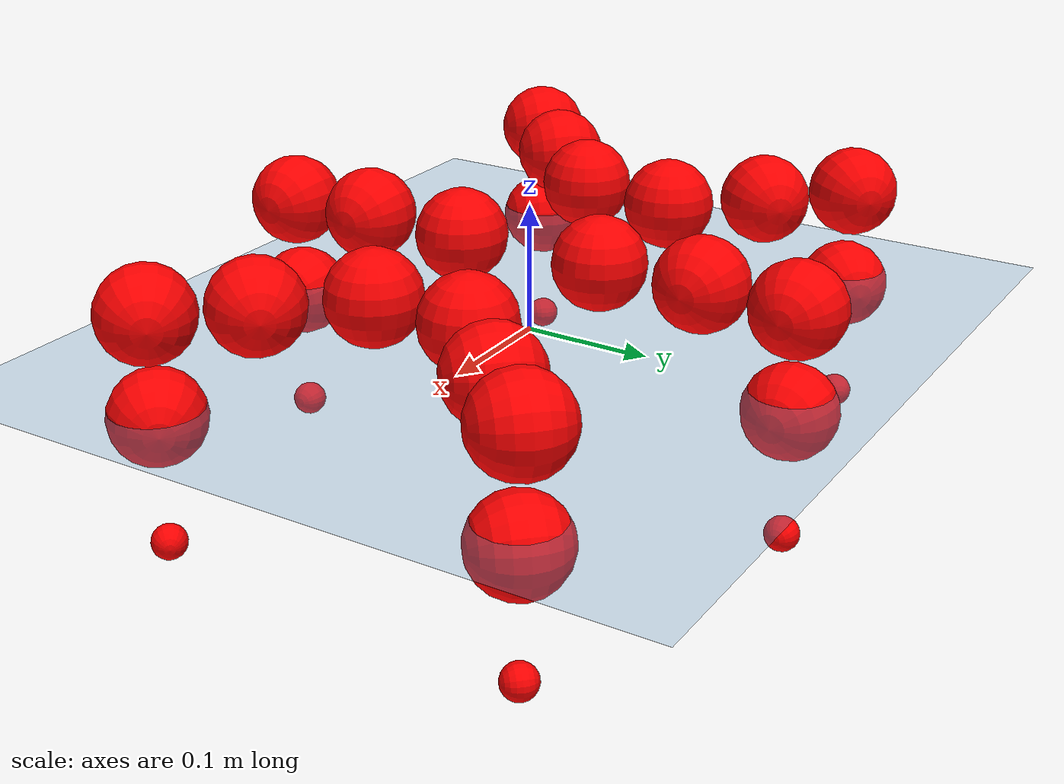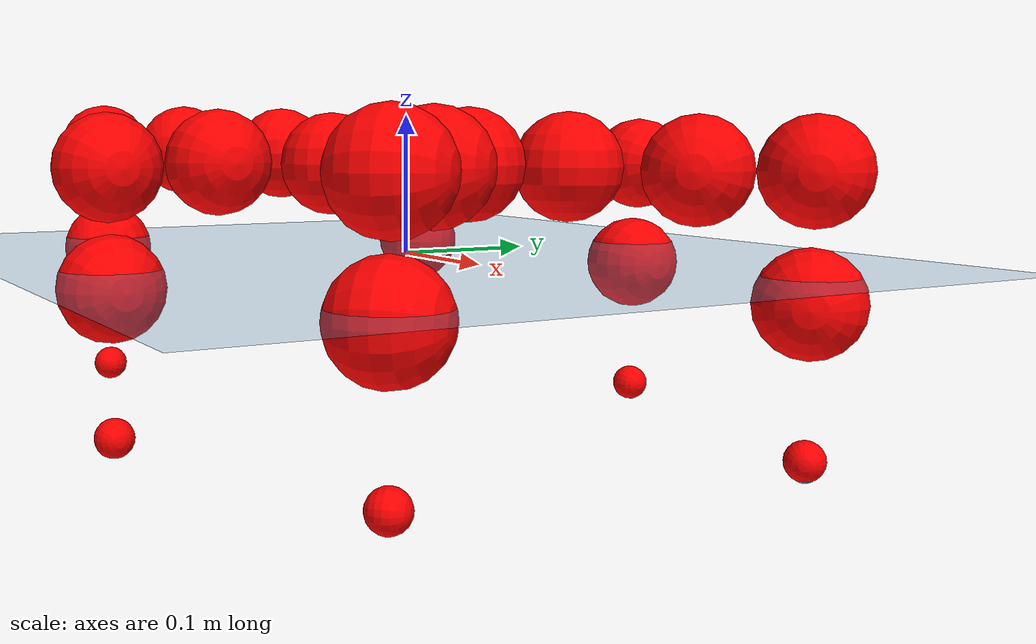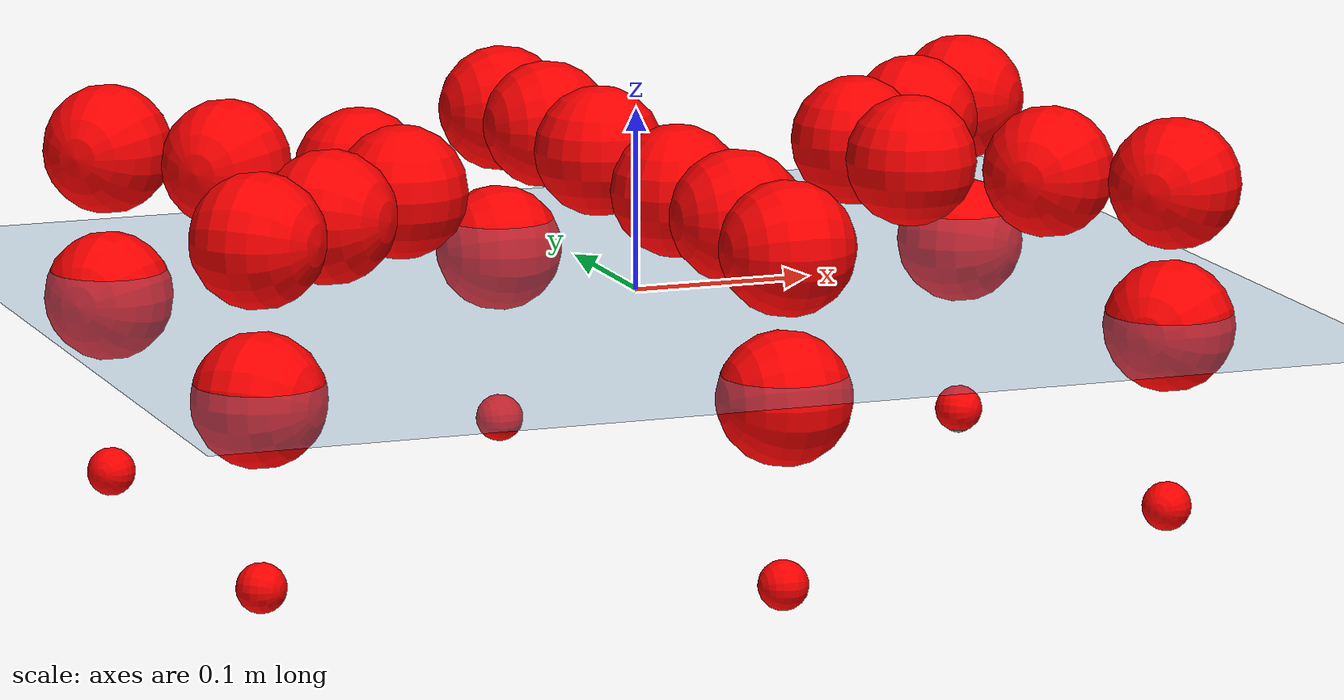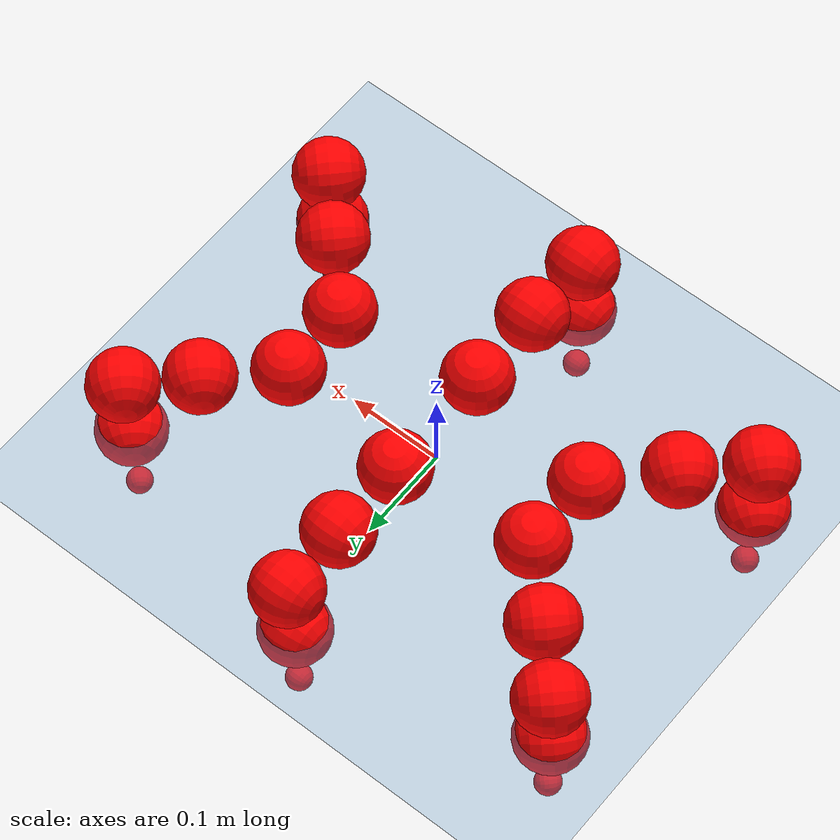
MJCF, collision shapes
<mujoco model="Golem">
  <compiler angle="radian" assetdir="assets" balanceinertia="true" inertiafromgeom="false"/>

  <option timestep="0.005" density="1.2" viscosity="2e-05"/>

  <size nkey="1"/>

  <visual>
    <quality shadowsize="8192"/>
    <map shadowclip="0.5"/>
  </visual>

  <default>
    <default class="/">
      <joint armature="0.01" damping="0.01" frictionloss="0.01"/>
      <geom contype="0" conaffinity="0" group="1" solref="-1000 -80"/>
      <site size="0.01 0.005 0.005" group="5"/>
      <general forcelimited="true" biastype="affine" gainprm="25" biasprm="0 -25 -0.5"/>
      <default class="visual">
        <geom type="mesh" group="2"/>
      </default>
      <default class="collision">
        <geom group="3"/>
      </default>
      <default class="foot">
        <geom size="0.01 0 0" condim="6" group="4" priority="1" solimp="0.015 1 0.01"/>
      </default>
      <default class="reward_collision_sphere">
        <geom group="5" rgba="1 0 0 1"/>
      </default>
    </default>
  </default>

  <asset>
    <texture type="skybox" colorspace="auto" name="//unnamed_texture_0" builtin="gradient" rgb1="0.95 0.95 0.95" rgb2="0.95 0.95 0.95" width="100" height="600"/>
    <texture type="2d" colorspace="auto" name="texplane" builtin="checker" rgb1="0.345 0.575 0.748" rgb2="0.345 0.575 0.748" markrgb="1 1 1" width="512" height="512"/>
    <material name="MatPlane" class="/" texture="texplane" texuniform="true" texrepeat="2 2" specular="0.9"/>
    <mesh name="body" class="/" file="body.stl" scale="0.001 0.001 0.001"/>
    <mesh name="coxa" class="/" file="coxa.stl" scale="0.001 0.001 0.001"/>
    <mesh name="femur" class="/" file="femur.stl" scale="0.001 0.001 0.001"/>
    <mesh name="tibia" class="/" file="tibia.stl" scale="0.001 0.001 0.001"/>
    <mesh name="tarsus" class="/" file="tarsus.stl" scale="0.001 0.001 0.001"/>
  </asset>

  <worldbody>
    <geom name="floor" class="/" size="100 100 0.125" type="plane" group="0" material="MatPlane"/>
    <light name="toplight_shadow" class="/" pos="0 0 5" dir="0.0990148 0.0990148 -0.990148" type="directional" ambient="0.04 0.04 0.04" diffuse="0.55 0.55 0.55" specular="0.12 0.12 0.12"/>
    <light name="toplight_fill" class="/" pos="0 0 5" dir="0.0990148 0.0990148 -0.990148" type="directional" castshadow="false" ambient="0.04 0.04 0.04" diffuse="0.3 0.3 0.3" specular="0.08 0.08 0.08"/>
    <body name="trunk" pos="0.000615531 0.000215848 -0.00107555" quat="0.999999 -0.00118449 0.000654821 -0.00033891">
      <inertial pos="0.000596755 0.00186034 -0.00318249" quat="0.999911 -0.0129262 -0.00287505 0.00131748" mass="2.72816" diaginertia="0.00711151 0.0015193 0.0153905"/>
      <joint name="//unnamed_joint_0" type="free"/>
      <geom name="//unnamed_geom_1" class="/" pos="0 0 0.0691953" quat="1 0 0 0" type="mesh" rgba="0.9 0.9 0.9 1" mesh="body"/>
      <site name="imu" class="/" pos="0.107134 -0.000559139 0.117175" size="0.00899742"/>
      <camera name="track" class="/" pos="0 -1.37645 0" quat="0.707107 0.707107 0 0" mode="trackcom"/>
      <camera name="ego_camera" class="/" pos="0.120878 0 0.108118" quat="-0.5 -0.5 0.5 0.5"/>
      <body name="coxa_RR" pos="-0.166448 -0.0552145 0.0715535" quat="0.382649 5.23322e-05 4.14288e-05 -0.923894">
        <inertial pos="-0.000502128 -0.00267383 -0.000282594" quat="0.999963 0.00706492 0.00469112 -0.00168511" mass="0.152254" diaginertia="0.00694099 0.00155171 0.0148917"/>
        <joint name="coxa_joint_RR" class="/" pos="0 0 0" axis="0.00662031 0.00273658 -0.999974" range="-3.19501 3.15248" armature="0.00816763" damping="0.0181554" frictionloss="0.00976528"/>
        <geom name="//unnamed_geom_2" class="/" type="mesh" rgba="0.2 0.2 0.2 1" mesh="coxa"/>
        <geom name="//unnamed_geom_3" class="reward_collision_sphere" size="0.0359897" pos="-0.0278948 0 0"/>
        <body name="femur_RR" pos="0.0578631 0.00101233 0.0018655" quat="0.500032 -0.499876 0.49998 0.500112">
          <inertial pos="0.000865519 -0.0026196 0.00113166" quat="1 -0.00016326 -2.30054e-05 -0.000347756" mass="0.143476" diaginertia="0.00689101 0.00152745 0.0144582"/>
          <joint name="femur_joint_RR" class="/" pos="0 0 0" axis="-0.00238017 -0.00817087 -0.999964" range="-3.10096 3.13942" armature="0.00782761" damping="0.00214775" frictionloss="0.00804679"/>
          <geom name="//unnamed_geom_4" class="/" type="mesh" rgba="0.9 0.9 0.9 1" mesh="femur"/>
          <geom name="//unnamed_geom_5" class="reward_collision_sphere" size="0.0359897"/>
          <body name="tibia_RR" pos="-0.000977667 -0.0751009 -0.00266569" quat="9.03736e-06 1 -2.32822e-06 4.17616e-06">
            <inertial pos="-0.0028256 0.00156666 -0.00109917" quat="0.999967 -0.0025404 -0.00490745 -0.00593566" mass="0.141912" diaginertia="0.00654919 0.00147326 0.0143935"/>
            <joint name="tibia_joint_RR" class="/" pos="0 0 0" axis="-0.00226863 0.00414731 0.999989" range="-3.13768 3.0896" armature="0.00935633" damping="0.0203226" frictionloss="0.0089466"/>
            <geom name="//unnamed_geom_6" class="/" type="mesh" rgba="0.2 0.2 0.2 1" mesh="tibia"/>
            <geom name="//unnamed_geom_7" class="reward_collision_sphere" size="0.0359897"/>
            <body name="tarsus_RR" pos="0.0841691 -0.0010343 0.000754916" quat="1 -0.000302227 0.000581534 -0.000218629">
              <inertial pos="0.0585488 -0.000398314 0.00256002" quat="0.497167 0.500139 0.498832 0.503839" mass="0.148685" diaginertia="0.00693912 0.00163909 0.0151125"/>
              <joint name="tarsus_joint_RR" class="/" pos="0 0 0" axis="0.00014403 -0.00777894 0.99997" range="-3.13636 3.15178" armature="0.0090157" damping="0.00176971" frictionloss="0.00882144"/>
              <geom name="//unnamed_geom_8" class="/" type="mesh" rgba="0.9 0.9 0.9 1" mesh="tarsus"/>
              <geom name="foot_1" class="foot" size="0.00896137" pos="0.104141 0 0" quat="0 -0.707107 0 0.707107"/>
              <geom name="//unnamed_geom_10" class="reward_collision_sphere" size="0.0359897"/>
              <geom name="//unnamed_geom_11" class="reward_collision_sphere" size="0.0134961" pos="0.0999565 0 0"/>
              <site name="foot_1" class="foot" pos="0.104141 0 0" quat="0 -0.707107 0 0.707107" size="0.00899742"/>
            </body>
          </body>
        </body>
      </body>
      <body name="coxa_RM" pos="0.00025886 -0.0893386 0.0671291" quat="0.707234 -7.7736e-05 0.000742727 -0.706979">
        <inertial pos="0.000407373 -0.00272185 0.000187459" quat="0.999952 -0.00959666 0.00215649 0.000230943" mass="0.141531" diaginertia="0.00654846 0.00146846 0.0147908"/>
        <joint name="coxa_joint_RM" class="/" pos="0 0 0" axis="-0.00271968 0.00405465 -0.999988" stiffness="0.00284753" range="-3.13827 3.13358" armature="0.00782406" damping="0.00871776" frictionloss="0.0102275"/>
        <geom name="//unnamed_geom_12" class="/" type="mesh" rgba="0.2 0.2 0.2 1" mesh="coxa"/>
        <geom name="//unnamed_geom_13" class="reward_collision_sphere" size="0.0359897" pos="-0.0278948 0 0"/>
        <body name="femur_RM" pos="0.0576024 0.00178456 0.00186225" quat="0.499936 -0.500028 0.500069 0.499966">
          <inertial pos="-0.001155 -0.00274397 -0.00105139" quat="0.999992 -0.000397658 -0.00407514 -0.000390202" mass="0.149157" diaginertia="0.00708012 0.0014906 0.0149607"/>
          <joint name="femur_joint_RM" class="/" pos="0 0 0" axis="0.0112664 -0.00389952 -0.999929" range="-3.17825 3.17694" armature="0.00926062" damping="0.0196323" frictionloss="0.00945869"/>
          <geom name="//unnamed_geom_14" class="/" type="mesh" rgba="0.9 0.9 0.9 1" mesh="femur"/>
          <geom name="//unnamed_geom_15" class="reward_collision_sphere" size="0.0359897"/>
          <body name="tibia_RM" pos="0.00242586 -0.0760784 -0.00106527" quat="0.000105662 1 4.84306e-05 2.18429e-05">
            <inertial pos="-0.00221392 -0.00110947 -0.00130671" quat="0.999949 -0.00748692 0.00422091 -0.00537888" mass="0.139902" diaginertia="0.00699873 0.00151084 0.0146684"/>
            <joint name="tibia_joint_RM" class="/" pos="0 0 0" axis="0.00333267 0.00253141 0.999991" stiffness="0.00465487" range="-3.18071 3.10226" armature="0.00801356" damping="0" frictionloss="0.00795796"/>
            <geom name="//unnamed_geom_16" class="/" type="mesh" rgba="0.2 0.2 0.2 1" mesh="tibia"/>
            <geom name="//unnamed_geom_17" class="reward_collision_sphere" size="0.0359897"/>
            <body name="tarsus_RM" pos="0.0794928 -0.00129716 0.000751035" quat="0.999999 0.00128986 9.09681e-05 0.000482782">
              <inertial pos="0.0529367 -0.000273569 -0.00244771" quat="0.495182 0.508666 0.50233 0.493679" mass="0.145715" diaginertia="0.00687638 0.00154827 0.0145903"/>
              <joint name="tarsus_joint_RM" class="/" pos="0 0 0" axis="0.00171078 7.30743e-05 0.999999" stiffness="0.000698752" range="-3.15589 3.13199" armature="0.0092294" damping="0.0075654" frictionloss="0.00865051"/>
              <geom name="//unnamed_geom_18" class="/" type="mesh" rgba="0.9 0.9 0.9 1" mesh="tarsus"/>
              <geom name="foot_2" class="foot" size="0.00849458" pos="0.104141 0 0" quat="0 -0.707107 0 0.707107"/>
              <geom name="//unnamed_geom_20" class="reward_collision_sphere" size="0.0359897"/>
              <geom name="//unnamed_geom_21" class="reward_collision_sphere" size="0.0134961" pos="0.0999565 0 0"/>
              <site name="foot_2" class="foot" pos="0.104141 0 0" quat="0 -0.707107 0 0.707107" size="0.00899742"/>
            </body>
          </body>
        </body>
      </body>
      <body name="coxa_RF" pos="0.165027 -0.05725 0.0699078" quat="0.923655 0.000182546 0.000114469 -0.383225">
        <inertial pos="0.001212 -0.00147285 -0.000682623" quat="0.99998 -0.00485902 -0.00287172 0.00285803" mass="0.145918" diaginertia="0.00713062 0.00156465 0.0146612"/>
        <joint name="coxa_joint_RF" class="/" pos="0 0 0" axis="-0.00222331 0.00554503 -0.999982" range="-3.14354 3.13045" armature="0.00910959" damping="0" frictionloss="0.00784022"/>
        <geom name="//unnamed_geom_22" class="/" type="mesh" rgba="0.2 0.2 0.2 1" mesh="coxa"/>
        <geom name="//unnamed_geom_23" class="reward_collision_sphere" size="0.0359897" pos="-0.0278948 0 0"/>
        <body name="femur_RF" pos="0.0531372 -0.000733253 0.000700775" quat="0.500009 -0.500137 0.499955 0.4999">
          <inertial pos="0.000339936 0.00052672 -0.00266299" quat="0.999901 -0.000264454 -0.00426755 0.0134019" mass="0.140858" diaginertia="0.0067221 0.00148808 0.0144253"/>
          <joint name="femur_joint_RF" class="/" pos="0 0 0" axis="-0.00583287 0.00811312 -0.99995" range="-3.08355 3.1945" armature="0.0091744" damping="0.00796626" frictionloss="0.00944444"/>
          <geom name="//unnamed_geom_24" class="/" type="mesh" rgba="0.9 0.9 0.9 1" mesh="femur"/>
          <geom name="//unnamed_geom_25" class="reward_collision_sphere" size="0.0359897"/>
          <body name="tibia_RF" pos="3.64514e-05 -0.0740333 -0.00281258" quat="-0.000374676 1 6.96112e-06 -3.88599e-05">
            <inertial pos="0.00143146 -0.00205 5.86124e-06" quat="0.999911 0.00207779 -0.0131321 0.000477842" mass="0.150705" diaginertia="0.00691891 0.00156444 0.0149953"/>
            <joint name="tibia_joint_RF" class="/" pos="0 0 0" axis="-0.003161 -0.00346525 0.999989" stiffness="0.0147109" range="-3.15719 3.09995" armature="0.00903999" damping="0.0174432" frictionloss="0.00898332"/>
            <geom name="//unnamed_geom_26" class="/" type="mesh" rgba="0.2 0.2 0.2 1" mesh="tibia"/>
            <geom name="//unnamed_geom_27" class="reward_collision_sphere" size="0.0359897"/>
            <body name="tarsus_RF" pos="0.0779914 -0.00156855 0.00121437" quat="0.999999 0.000668078 -0.000582288 0.000911355">
              <inertial pos="0.057037 -0.00099878 0.00134899" quat="0.500262 0.500558 0.49892 0.500259" mass="0.142501" diaginertia="0.00709403 0.00155124 0.0144099"/>
              <joint name="tarsus_joint_RF" class="/" pos="0 0 0" axis="-0.00657488 -0.00151391 0.999977" range="-3.12188 3.11687" armature="0.0093777" damping="0" frictionloss="0.00897269"/>
              <geom name="//unnamed_geom_28" class="/" type="mesh" rgba="0.9 0.9 0.9 1" mesh="tarsus"/>
              <geom name="foot_3" class="foot" size="0.00916317" pos="0.104141 0 0" quat="0 -0.707107 0 0.707107"/>
              <geom name="//unnamed_geom_30" class="reward_collision_sphere" size="0.0359897"/>
              <geom name="//unnamed_geom_31" class="reward_collision_sphere" size="0.0134961" pos="0.0999565 0 0"/>
              <site name="foot_3" class="foot" pos="0.104141 0 0" quat="0 -0.707107 0 0.707107" size="0.00899742"/>
            </body>
          </body>
        </body>
      </body>
      <body name="coxa_LR" pos="-0.165181 0.0610464 0.0676787" quat="0.382653 0.000147031 8.97798e-05 0.923892">
        <inertial pos="-0.000320665 -0.00279065 -0.0020287" quat="0.999921 -0.0106346 0.00529583 0.0041891" mass="0.140285" diaginertia="0.00693232 0.00157798 0.0147128"/>
        <joint name="coxa_joint_LR" class="/" pos="0 0 0" axis="-0.00790141 0.00336873 -0.999963" stiffness="0.0142633" range="-3.13696 3.13436" armature="0.0101525" damping="0.0130531" frictionloss="0.0100177"/>
        <geom name="//unnamed_geom_32" class="/" type="mesh" rgba="0.2 0.2 0.2 1" mesh="coxa"/>
        <geom name="//unnamed_geom_33" class="reward_collision_sphere" size="0.0359897" pos="-0.0278948 0 0"/>
        <body name="femur_LR" pos="0.0541565 -0.00100948 -0.00187367" quat="0.500569 -0.49904 0.500426 0.499964">
          <inertial pos="0.000877353 -0.00276435 -0.000500183" quat="0.9999 -0.00458663 0.00630773 0.0117789" mass="0.148307" diaginertia="0.00682186 0.00151517 0.0146508"/>
          <joint name="femur_joint_LR" class="/" pos="0 0 0" axis="0.000816759 0.000473282 1" range="-3.13149 3.13788" armature="0.0102367" damping="0.0152256" frictionloss="0.00901924"/>
          <geom name="//unnamed_geom_34" class="/" type="mesh" rgba="0.9 0.9 0.9 1" mesh="femur"/>
          <geom name="//unnamed_geom_35" class="reward_collision_sphere" size="0.0359897"/>
          <body name="tibia_LR" pos="-0.00190102 -0.0756925 -0.00299327" quat="-0.000179339 1 0.0001066 0.000205541">
            <inertial pos="0.000287047 0.00165524 0.00146107" quat="0.99998 0.000983118 -0.00585161 0.00204525" mass="0.150462" diaginertia="0.00708636 0.00160597 0.015637"/>
            <joint name="tibia_joint_LR" class="/" pos="0 0 0" axis="-0.000972696 0.00136591 -0.999999" range="-3.10001 3.14644" armature="0.00895003" damping="0.0146694" frictionloss="0.0101747"/>
            <geom name="//unnamed_geom_36" class="/" type="mesh" rgba="0.2 0.2 0.2 1" mesh="tibia"/>
            <geom name="//unnamed_geom_37" class="reward_collision_sphere" size="0.0359897"/>
            <body name="tarsus_LR" pos="0.0821925 -0.000839605 -0.00226901" quat="1 0.000444017 0.00060912 -0.000144658">
              <inertial pos="0.0562833 0.000142064 0.000577776" quat="0.500054 0.4999 0.499929 0.500116" mass="0.145842" diaginertia="0.00726079 0.00154594 0.0150011"/>
              <joint name="tarsus_joint_LR" class="/" pos="0 0 0" axis="-0.00144829 0.000235082 -0.999999" range="-3.08499 3.08257" armature="0.00784934" damping="0.0153692" frictionloss="0.00888346"/>
              <geom name="//unnamed_geom_38" class="/" type="mesh" rgba="0.9 0.9 0.9 1" mesh="tarsus"/>
              <geom name="foot_4" class="foot" size="0.00885105" pos="0.104141 0 0" quat="0.707107 0 -0.707107 0"/>
              <geom name="//unnamed_geom_40" class="reward_collision_sphere" size="0.0359897"/>
              <geom name="//unnamed_geom_41" class="reward_collision_sphere" size="0.0134961" pos="0.0999565 0 0"/>
              <site name="foot_4" class="foot" pos="0.104141 0 0" quat="0.707107 0 -0.707107 0" size="0.00899742"/>
            </body>
          </body>
        </body>
      </body>
      <body name="coxa_LM" pos="-0.000668778 0.087473 0.0674259" quat="0.706784 -0.000422396 -0.000597266 0.707429">
        <inertial pos="0.000427507 -0.00126062 -2.91003e-05" quat="0.999902 -0.0137084 0.00279878 0.000125148" mass="0.148524" diaginertia="0.00664385 0.00152394 0.0143694"/>
        <joint name="coxa_joint_LM" class="/" pos="0 0 0" axis="-0.00872288 -0.00281274 -0.999958" range="-3.12163 3.09273" armature="0.00874941" damping="0.02183" frictionloss="0.00886534"/>
        <geom name="//unnamed_geom_42" class="/" type="mesh" rgba="0.2 0.2 0.2 1" mesh="coxa"/>
        <geom name="//unnamed_geom_43" class="reward_collision_sphere" size="0.0359897" pos="-0.0278948 0 0"/>
        <body name="femur_LM" pos="0.0550853 0.00103024 0.000270439" quat="0.500004 -0.500016 0.500018 0.499962">
          <inertial pos="-0.000396878 0.00264859 -0.00276034" quat="0.999988 -0.000532413 0.000618542 -0.00483743" mass="0.148645" diaginertia="0.00668273 0.00157811 0.0148552"/>
          <joint name="femur_joint_LM" class="/" pos="0 0 0" axis="-0.00697145 0.00178319 0.999974" stiffness="0.00888022" range="-3.13412 3.13314" armature="0.00877424" damping="0" frictionloss="0.00997956"/>
          <geom name="//unnamed_geom_44" class="/" type="mesh" rgba="0.9 0.9 0.9 1" mesh="femur"/>
          <geom name="//unnamed_geom_45" class="reward_collision_sphere" size="0.0359897"/>
          <body name="tibia_LM" pos="0.00352146 -0.0739895 0.00121318" quat="-8.66807e-05 1 -0.00096542 -6.04369e-06">
            <inertial pos="0.00121612 -0.000397111 0.00246001" quat="0.999941 -0.00923397 -0.000514029 -0.00573567" mass="0.144883" diaginertia="0.00706998 0.00154171 0.0144611"/>
            <joint name="tibia_joint_LM" class="/" pos="0 0 0" axis="-0.00331481 -0.0083685 -0.999959" stiffness="0.010733" range="-3.14658 3.16912" armature="0.00938974" damping="0" frictionloss="0.0102216"/>
            <geom name="//unnamed_geom_46" class="/" type="mesh" rgba="0.2 0.2 0.2 1" mesh="tibia"/>
            <geom name="//unnamed_geom_47" class="reward_collision_sphere" size="0.0359897"/>
            <body name="tarsus_LM" pos="0.0804725 -0.00273434 -0.00309101" quat="1 1.4157e-05 -5.32999e-06 -1.35735e-05">
              <inertial pos="0.0567193 -0.00175407 -0.00212325" quat="0.499568 0.500578 0.499715 0.500138" mass="0.146013" diaginertia="0.00690981 0.0015353 0.0154069"/>
              <joint name="tarsus_joint_LM" class="/" pos="0 0 0" axis="-0.00758591 0.000523282 -0.999971" range="-3.12046 3.15878" armature="0.00873369" damping="0.00867822" frictionloss="0.0082213"/>
              <geom name="//unnamed_geom_48" class="/" type="mesh" rgba="0.9 0.9 0.9 1" mesh="tarsus"/>
              <geom name="foot_5" class="foot" size="0.00922448" pos="0.104141 0 0" quat="0.707107 0 -0.707107 0"/>
              <geom name="//unnamed_geom_50" class="reward_collision_sphere" size="0.0359897"/>
              <geom name="//unnamed_geom_51" class="reward_collision_sphere" size="0.0134961" pos="0.0999565 0 0"/>
              <site name="foot_5" class="foot" pos="0.104141 0 0" quat="0.707107 0 -0.707107 0" size="0.00899742"/>
            </body>
          </body>
        </body>
      </body>
      <body name="coxa_LF" pos="0.163165 0.0597464 0.0676532" quat="0.923816 -0.000137619 -0.000446724 0.382837">
        <inertial pos="0.0023607 0.00141853 0.00237456" quat="0.999987 -0.00177395 0.00429196 -0.00195335" mass="0.143895" diaginertia="0.0069328 0.00157279 0.0147732"/>
        <joint name="coxa_joint_LF" class="/" pos="0 0 0" axis="-0.000239526 0.00144554 -0.999999" stiffness="0.00457087" range="-3.13855 3.10827" armature="0.00786221" damping="0.00269329" frictionloss="0.00937283"/>
        <geom name="//unnamed_geom_52" class="/" type="mesh" rgba="0.2 0.2 0.2 1" mesh="coxa"/>
        <geom name="//unnamed_geom_53" class="reward_collision_sphere" size="0.0359897" pos="-0.0278948 0 0"/>
        <body name="femur_LF" pos="0.0546863 -0.000516848 -0.00154975" quat="0.499823 -0.50075 0.499906 0.499521">
          <inertial pos="-0.00193105 0.00244238 0.000888008" quat="0.999915 0.00191664 -0.0128387 -0.00146379" mass="0.141565" diaginertia="0.00676614 0.00152378 0.0146826"/>
          <joint name="femur_joint_LF" class="/" pos="0 0 0" axis="-0.00305767 -0.00563573 0.999979" range="-3.16746 3.12087" armature="0.00915254" damping="0" frictionloss="0.00899637"/>
          <geom name="//unnamed_geom_54" class="/" type="mesh" rgba="0.9 0.9 0.9 1" mesh="femur"/>
          <geom name="//unnamed_geom_55" class="reward_collision_sphere" size="0.0359897"/>
          <body name="tibia_LF" pos="-2.88126e-05 -0.0717926 0.00108634" quat="0.00110699 0.999999 -0.000132827 -0.000415378">
            <inertial pos="-0.00197999 0.000562922 -3.01971e-05" quat="0.999999 -0.000285982 -0.00147345 2.34486e-05" mass="0.146574" diaginertia="0.0067076 0.00153485 0.0143287"/>
            <joint name="tibia_joint_LF" class="/" pos="0 0 0" axis="-0.00300473 -0.000820732 -0.999995" stiffness="0.0134518" range="-3.14557 3.19307" armature="0.0084226" damping="0.0124703" frictionloss="0.00878445"/>
            <geom name="//unnamed_geom_56" class="/" type="mesh" rgba="0.2 0.2 0.2 1" mesh="tibia"/>
            <geom name="//unnamed_geom_57" class="reward_collision_sphere" size="0.0359897"/>
            <body name="tarsus_LF" pos="0.083067 -0.00142221 0.000608102" quat="1 2.83845e-05 -4.84952e-05 -7.33785e-06">
              <inertial pos="0.0533225 -0.00244943 -0.00264538" quat="0.498492 0.497434 0.497948 0.506076" mass="0.141575" diaginertia="0.00694952 0.00153087 0.0148342"/>
              <joint name="tarsus_joint_LF" class="/" pos="0 0 0" axis="0.00811748 0.0120811 -0.999894" range="-3.1725 3.19548" armature="0.00775253" damping="0.0124298" frictionloss="0.00856365"/>
              <geom name="//unnamed_geom_58" class="/" type="mesh" rgba="0.9 0.9 0.9 1" mesh="tarsus"/>
              <geom name="foot_6" class="foot" size="0.00987396" pos="0.104141 0 0" quat="0.707107 0 -0.707107 0"/>
              <geom name="//unnamed_geom_60" class="reward_collision_sphere" size="0.0359897"/>
              <geom name="//unnamed_geom_61" class="reward_collision_sphere" size="0.0134961" pos="0.0999565 0 0"/>
              <site name="foot_6" class="foot" pos="0.104141 0 0" quat="0.707107 0 -0.707107 0" size="0.00899742"/>
            </body>
          </body>
        </body>
      </body>
    </body>
  </worldbody>

  <contact>
    <pair class="/" geom1="floor" geom2="foot_1" name="//unnamed_contact_0"/>
    <pair class="/" geom1="floor" geom2="foot_2" name="//unnamed_contact_1"/>
    <pair class="/" geom1="floor" geom2="foot_3" name="//unnamed_contact_2"/>
    <pair class="/" geom1="floor" geom2="foot_4" name="//unnamed_contact_3"/>
    <pair class="/" geom1="floor" geom2="foot_5" name="//unnamed_contact_4"/>
    <pair class="/" geom1="floor" geom2="foot_6" name="//unnamed_contact_5"/>
  </contact>

  <actuator>
    <general name="coxa_joint_RR" class="/" joint="coxa_joint_RR" forcerange="-6.79246 6.79246" gainprm="21.4688" biasprm="0 -21.4688 -0.467724"/>
    <general name="femur_joint_RR" class="/" joint="femur_joint_RR" forcerange="-7.24303 7.24303" gainprm="21.4688" biasprm="0 -21.4688 -0.467724"/>
    <general name="tibia_joint_RR" class="/" joint="tibia_joint_RR" forcerange="-6.15533 6.15533" gainprm="21.4688" biasprm="0 -21.4688 -0.467724"/>
    <general name="tarsus_joint_RR" class="/" joint="tarsus_joint_RR" forcerange="-7.20195 7.20195" gainprm="21.4688" biasprm="0 -21.4688 -0.467724"/>
    <general name="coxa_joint_RM" class="/" joint="coxa_joint_RM" forcerange="-6.47397 6.47397" gainprm="21.4688" biasprm="0 -21.4688 -0.467724"/>
    <general name="femur_joint_RM" class="/" joint="femur_joint_RM" forcerange="-6.81445 6.81445" gainprm="21.4688" biasprm="0 -21.4688 -0.467724"/>
    <general name="tibia_joint_RM" class="/" joint="tibia_joint_RM" forcerange="-7.21671 7.21671" gainprm="21.4688" biasprm="0 -21.4688 -0.467724"/>
    <general name="tarsus_joint_RM" class="/" joint="tarsus_joint_RM" forcerange="-6.16284 6.16284" gainprm="21.4688" biasprm="0 -21.4688 -0.467724"/>
    <general name="coxa_joint_RF" class="/" joint="coxa_joint_RF" forcerange="-7.06258 7.06258" gainprm="21.4688" biasprm="0 -21.4688 -0.467724"/>
    <general name="femur_joint_RF" class="/" joint="femur_joint_RF" forcerange="-6.53311 6.53311" gainprm="21.4688" biasprm="0 -21.4688 -0.467724"/>
    <general name="tibia_joint_RF" class="/" joint="tibia_joint_RF" forcerange="-6.74929 6.74929" gainprm="21.4688" biasprm="0 -21.4688 -0.467724"/>
    <general name="tarsus_joint_RF" class="/" joint="tarsus_joint_RF" forcerange="-6.53663 6.53663" gainprm="21.4688" biasprm="0 -21.4688 -0.467724"/>
    <general name="coxa_joint_LR" class="/" joint="coxa_joint_LR" forcerange="-6.8384 6.8384" gainprm="21.4688" biasprm="0 -21.4688 -0.467724"/>
    <general name="femur_joint_LR" class="/" joint="femur_joint_LR" forcerange="-6.52938 6.52938" gainprm="21.4688" biasprm="0 -21.4688 -0.467724"/>
    <general name="tibia_joint_LR" class="/" joint="tibia_joint_LR" forcerange="-7.16161 7.16161" gainprm="21.4688" biasprm="0 -21.4688 -0.467724"/>
    <general name="tarsus_joint_LR" class="/" joint="tarsus_joint_LR" forcerange="-6.74088 6.74088" gainprm="21.4688" biasprm="0 -21.4688 -0.467724"/>
    <general name="coxa_joint_LM" class="/" joint="coxa_joint_LM" forcerange="-6.12413 6.12413" gainprm="21.4688" biasprm="0 -21.4688 -0.467724"/>
    <general name="femur_joint_LM" class="/" joint="femur_joint_LM" forcerange="-7.08296 7.08296" gainprm="21.4688" biasprm="0 -21.4688 -0.467724"/>
    <general name="tibia_joint_LM" class="/" joint="tibia_joint_LM" forcerange="-6.89521 6.89521" gainprm="21.4688" biasprm="0 -21.4688 -0.467724"/>
    <general name="tarsus_joint_LM" class="/" joint="tarsus_joint_LM" forcerange="-6.53614 6.53614" gainprm="21.4688" biasprm="0 -21.4688 -0.467724"/>
    <general name="coxa_joint_LF" class="/" joint="coxa_joint_LF" forcerange="-5.95728 5.95728" gainprm="21.4688" biasprm="0 -21.4688 -0.467724"/>
    <general name="femur_joint_LF" class="/" joint="femur_joint_LF" forcerange="-5.93679 5.93679" gainprm="21.4688" biasprm="0 -21.4688 -0.467724"/>
    <general name="tibia_joint_LF" class="/" joint="tibia_joint_LF" forcerange="-6.02908 6.02908" gainprm="21.4688" biasprm="0 -21.4688 -0.467724"/>
    <general name="tarsus_joint_LF" class="/" joint="tarsus_joint_LF" forcerange="-5.88053 5.88053" gainprm="21.4688" biasprm="0 -21.4688 -0.467724"/>
  </actuator>

  <sensor>
    <gyro site="imu" name="imu_angular_velocity"/>
    <velocimeter site="imu" name="imu_linear_velocity"/>
    <framelinvel objtype="site" objname="foot_1" name="foot_1_global_linear_velocity"/>
    <framelinvel objtype="site" objname="foot_2" name="foot_2_global_linear_velocity"/>
    <framelinvel objtype="site" objname="foot_3" name="foot_3_global_linear_velocity"/>
    <framelinvel objtype="site" objname="foot_4" name="foot_4_global_linear_velocity"/>
    <framelinvel objtype="site" objname="foot_5" name="foot_5_global_linear_velocity"/>
    <framelinvel objtype="site" objname="foot_6" name="foot_6_global_linear_velocity"/>
  </sensor>

  <keyframe>
    <key name="home" qpos="0 0 0.1457 1 0 0 0 0 0 0 0 0 0 0 0 0 0 0 0 0 0 0 0 0 0 0 0 0 0 0 0"/>
  </keyframe>
</mujoco>
